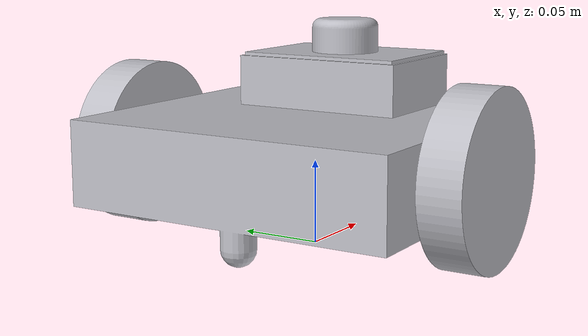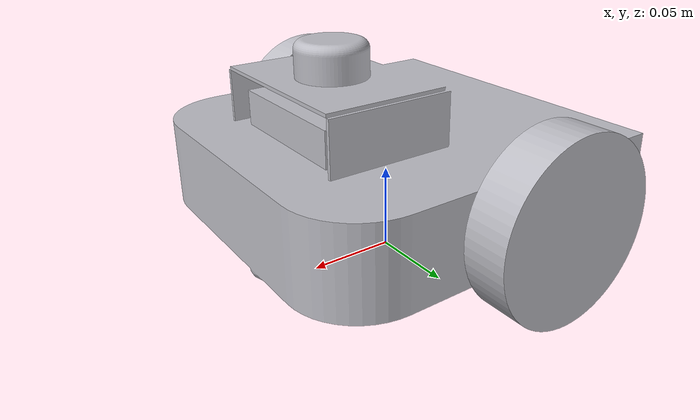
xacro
<?xml version="1.0" ?>
<robot name="simplebot" xmlns:xacro="http://www.ros.org/wiki/xacro">

<xacro:include filename="$(find simplebot_description)/urdf/materials.xacro" />
<xacro:include filename="$(find simplebot_description)/urdf/simplebot.trans" />
<xacro:include filename="$(find simplebot_description)/gazebo/simplebot_materials.gazebo" />
<xacro:include filename="$(find simplebot_description)/gazebo/simplebot_physics.gazebo" />
<xacro:include filename="$(find simplebot_description)/gazebo/simplebot_plugin.gazebo" />

<link name="base_link">
  <inertial>
    <origin rpy="0 0 0" xyz="-0.0011699108962758224 0.0 0.055438282570739045"/>
    <mass value="2.1283923107676976"/>
    <inertia ixx="0.00733" ixy="0.0" ixz="-4.2e-05" iyy="0.007417" iyz="0.0" izz="0.013696"/>
  </inertial>
  <visual>
    <origin rpy="0 0 0" xyz="0 0 0"/>
    <geometry>
      <mesh filename="package://simplebot_description/meshes/base_link.stl" scale="0.001 0.001 0.001"/>
    </geometry>
    <material name="silver"/>
  </visual>
  <collision>
    <origin rpy="0 0 0" xyz="0 0 0"/>
    <geometry>
      <mesh filename="package://simplebot_description/meshes/base_link.stl" scale="0.001 0.001 0.001"/>
    </geometry>
  </collision>
</link>

<link name="right_wheel_1">
  <inertial>
    <origin rpy="0 0 0" xyz="-3.469446951953614e-18 -0.012499999999999997 0.0"/>
    <mass value="0.1826050729899067"/>
    <inertia ixx="0.000124" ixy="-0.0" ixz="0.0" iyy="0.000228" iyz="0.0" izz="0.000124"/>
  </inertial>
  <visual>
    <origin rpy="0 0 0" xyz="0.02 0.1 -0.055"/>
    <geometry>
      <mesh filename="package://simplebot_description/meshes/right_wheel_1.stl" scale="0.001 0.001 0.001"/>
    </geometry>
    <material name="silver"/>
  </visual>
  <collision>
    <origin rpy="0 0 0" xyz="0.02 0.1 -0.055"/>
    <geometry>
      <mesh filename="package://simplebot_description/meshes/right_wheel_1.stl" scale="0.001 0.001 0.001"/>
    </geometry>
  </collision>
</link>

<link name="left_wheel_1">
  <inertial>
    <origin rpy="0 0 0" xyz="-3.469446951953614e-18 0.012499999999999997 0.0"/>
    <mass value="0.1826050729899067"/>
    <inertia ixx="0.000124" ixy="0.0" ixz="0.0" iyy="0.000228" iyz="-0.0" izz="0.000124"/>
  </inertial>
  <visual>
    <origin rpy="0 0 0" xyz="0.02 -0.1 -0.055"/>
    <geometry>
      <mesh filename="package://simplebot_description/meshes/left_wheel_1.stl" scale="0.001 0.001 0.001"/>
    </geometry>
    <material name="silver"/>
  </visual>
  <collision>
    <origin rpy="0 0 0" xyz="0.02 -0.1 -0.055"/>
    <geometry>
      <mesh filename="package://simplebot_description/meshes/left_wheel_1.stl" scale="0.001 0.001 0.001"/>
    </geometry>
  </collision>
</link>

<link name="lidar_1">
  <inertial>
    <origin rpy="0 0 0" xyz="6.938893903907228e-18 5.981159620339096e-18 0.009769879142673077"/>
    <mass value="0.1922951532781708"/>
    <inertia ixx="2.5e-05" ixy="0.0" ixz="0.0" iyy="2.5e-05" iyz="-0.0" izz="3.8e-05"/>
  </inertial>
  <visual>
    <origin rpy="0 0 0" xyz="-0.035 -0.0 -0.112"/>
    <geometry>
      <mesh filename="package://simplebot_description/meshes/lidar_1.stl" scale="0.001 0.001 0.001"/>
    </geometry>
    <material name="silver"/>
  </visual>
  <collision>
    <origin rpy="0 0 0" xyz="-0.035 -0.0 -0.112"/>
    <geometry>
      <mesh filename="package://simplebot_description/meshes/lidar_1.stl" scale="0.001 0.001 0.001"/>
    </geometry>
  </collision>
</link>

<link name="camera_1">
  <inertial>
    <origin rpy="0 0 0" xyz="2.0816681711721685e-17 4.930380657631324e-34 0.009999999999999995"/>
    <mass value="0.1256"/>
    <inertia ixx="7.1e-05" ixy="0.0" ixz="0.0" iyy="5e-06" iyz="0.0" izz="6.8e-05"/>
  </inertial>
  <visual>
    <origin rpy="0 0 0" xyz="-0.06 -0.0 -0.08"/>
    <geometry>
      <mesh filename="package://simplebot_description/meshes/camera_1.stl" scale="0.001 0.001 0.001"/>
    </geometry>
    <material name="silver"/>
  </visual>
  <collision>
    <origin rpy="0 0 0" xyz="-0.06 -0.0 -0.08"/>
    <geometry>
      <mesh filename="package://simplebot_description/meshes/camera_1.stl" scale="0.001 0.001 0.001"/>
    </geometry>
  </collision>
</link>

<joint name="Rev1" type="continuous">
  <origin rpy="0 0 0" xyz="-0.02 -0.1 0.055"/>
  <parent link="base_link"/>
  <child link="right_wheel_1"/>
  <axis xyz="0.0 1.0 0.0"/>
</joint>

<joint name="Rev2" type="continuous">
  <origin rpy="0 0 0" xyz="-0.02 0.1 0.055"/>
  <parent link="base_link"/>
  <child link="left_wheel_1"/>
  <axis xyz="0.0 1.0 0.0"/>
</joint>

<joint name="Rigid3" type="fixed">
  <origin rpy="0 0 0" xyz="0.035 0.0 0.112"/>
  <parent link="base_link"/>
  <child link="lidar_1"/>
</joint>

<joint name="Rigid4" type="fixed">
  <origin rpy="0 0 0" xyz="0.06 0.0 0.08"/>
  <parent link="base_link"/>
  <child link="camera_1"/>
</joint>

</robot>

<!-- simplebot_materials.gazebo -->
<robot name="simplebot" xmlns:xacro="http://www.ros.org/wiki/xacro" >

<xacro:property name="body_color" value="Gazebo/White" />
<xacro:property name="wheels_color" value="Gazebo/Black" />
<xacro:property name="lidar_color" value="Gazebo/Red" />
<xacro:property name="camera_color" value="Gazebo/Blue" />

<gazebo reference="base_link">
  <material>${body_color}</material>
</gazebo>

<gazebo reference="right_wheel_1">
  <material>${wheels_color}</material>
</gazebo>

<gazebo reference="left_wheel_1">
  <material>${wheels_color}</material>
</gazebo>

<gazebo reference="lidar_1">
  <material>${lidar_color}</material>
</gazebo>

<gazebo reference="camera_1">
  <material>${camera_color}</material>
</gazebo>

</robot>
